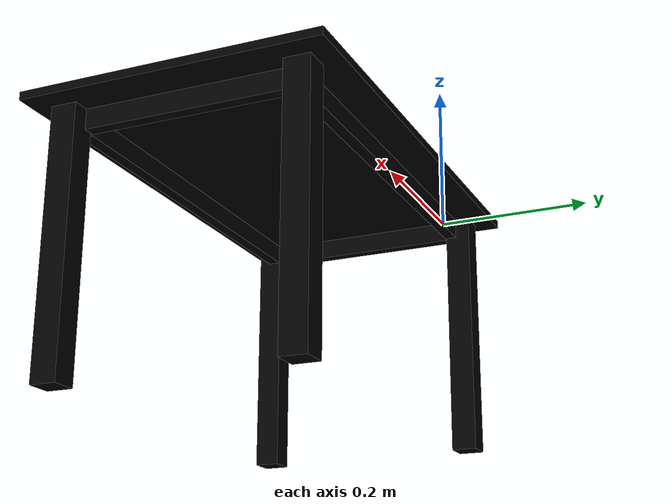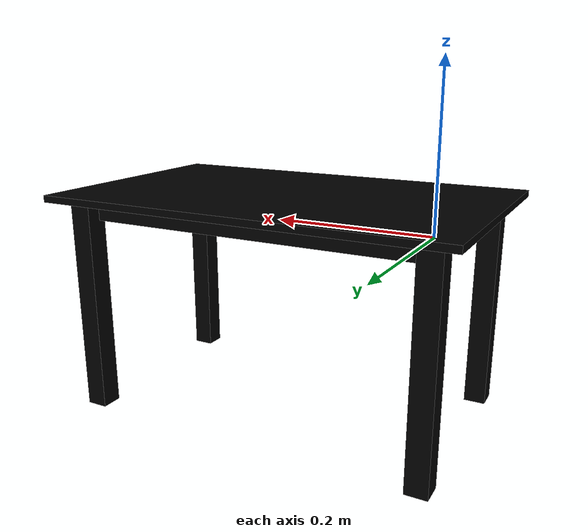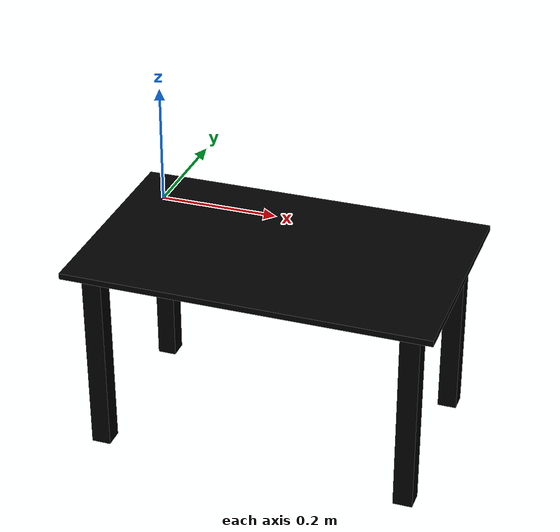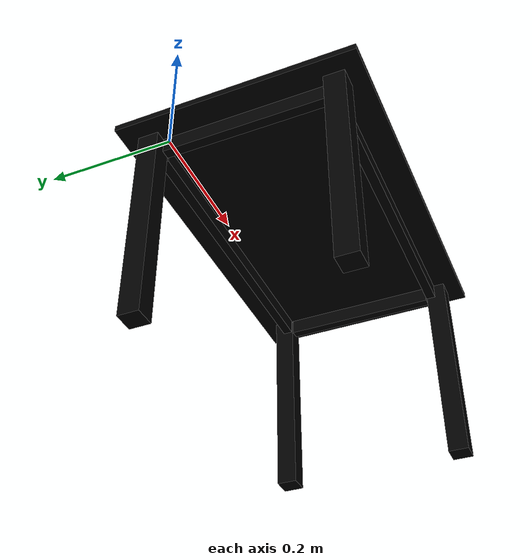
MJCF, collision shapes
<mujoco model="table_bjorkudden_0207">
  <custom>
    <numeric data="0.146806 0.093341 0.015845 0.707107 0.0 0.707107 0.0" name="0_part0_initpos" />
   <numeric data="-0.35001 0.049956 0.018455 0.0 -1.0 5.9e-05 -0.0" name="4_part4_initpos" />
   <numeric data="-0.133236 0.38 0.015845 0.5 -0.5 0.5 -0.5" name="3_part3_initpos" />
   <numeric data="-0.144303 0.29 0.015845 0.5 -0.5 0.5 -0.5" name="2_part2_initpos" />
   <numeric data="0.156754 0.18 0.015948 0.707107 -0.0 0.707107 -0.0" name="1_part1_initpos" />
  </custom>
  <asset>
    <mesh file="table_bjorkudden_0207/1.stl" name="part1" scale="0.0005 0.0005 0.0005" />
    <mesh file="table_bjorkudden_0207/5.stl" name="part5" scale="0.0005 0.0005 0.0005" />
    <mesh file="table_bjorkudden_0207/4.stl" name="part4" scale="0.0005 0.0005 0.0005" />
    <mesh file="table_bjorkudden_0207/3.stl" name="part3" scale="0.0005 0.0005 0.0005" />
    <mesh file="table_bjorkudden_0207/2.stl" name="part2" scale="0.0005 0.0005 0.0005" />
  </asset>
  <equality>
    <weld active="false" body1="0_part0" body2="4_part4" solimp="1 1 0.5" solref="0.01 0.3" />
    <weld active="false" body1="2_part2" body2="4_part4" solimp="1 1 0.5" solref="0.01 0.3" />
    <weld active="false" body1="3_part3" body2="4_part4" solimp="1 1 0.5" solref="0.01 0.3" />
    <weld active="false" body1="1_part1" body2="4_part4" solimp="1 1 0.5" solref="0.01 0.3" />
    <weld active="false" body1="0_part0" body2="4_part4" solimp="1 1 0.5" solref="0.01 0.3" />
    <weld active="false" body1="2_part2" body2="4_part4" solimp="1 1 0.5" solref="0.01 0.3" />
    <weld active="false" body1="1_part1" body2="4_part4" solimp="1 1 0.5" solref="0.01 0.3" />
    <weld active="false" body1="3_part3" body2="4_part4" solimp="1 1 0.5" solref="0.01 0.3" />
  </equality>
  <worldbody>
    <body name="0_part0" pos="0.5064125 -0.263525 -0.15875" quat="1 0 0 0">
      <site group="1" name="0_part0_ltgt_site0" pos="0 -0.02 0" rgba="0 0 0 0" size="0.01 0.01 0.01" type="sphere" />
      <site group="1" name="0_part0_rtgt_site0" pos="0 0.02 0" rgba="0 0 0 0" size="0.01 0.01 0.01" type="sphere" />
      <geom conaffinity="0" contype="0" density="0" mesh="part1" name="0_part0_mesh" pos="0.0 0.0 0.0" rgba="0.82 0.71 0.55 1" type="mesh" />
      <site name="0_part0_horizontal_radius_site" pos="0.0 0.0 0.0" quat="1 0 0 0" rgba="0 0 0 0" size="0.0005" />
      <site name="0_part0_top_site" pos="0.0 0.0 0.15875" quat="1 0 0 0" rgba="0 0 0 0" size="0.0005" />
      <site name="0_part0_bottom_site" pos="0.0 0.0 -0.15875" quat="1 0 0 0" rgba="0 0 0 0" size="0.0005" />
      <site name="0_part0_corner_site8" pos="-0.015875 0.015875 0.15875" quat="1 0 0 0" rgba="0 0 0 0" size="0.01" />
      <site name="0_part0_corner_site7" pos="0.015875 0.015875 0.15875" quat="1 0 0 0" rgba="0 0 0 0" size="0.01" />
      <site name="0_part0_corner_site6" pos="0.015875 -0.015875 0.15875" quat="1 0 0 0" rgba="0 0 0 0" size="0.01" />
      <site name="0_part0_corner_site5" pos="-0.015875 -0.015875 0.15875" quat="1 0 0 0" rgba="0 0 0 0" size="0.01" />
      <site name="0_part0_corner_site4" pos="-0.015875 0.015875 -0.15875" quat="1 0 0 0" rgba="0 0 0 0" size="0.01" />
      <site name="0_part0_corner_site3" pos="0.015875 0.015875 -0.15875" quat="1 0 0 0" rgba="0 0 0 0" size="0.01" />
      <site name="0_part0_corner_site2" pos="0.015875 -0.015875 -0.15875" quat="1 0 0 0" rgba="0 0 0 0" size="0.01" />
      <site name="0_part0_corner_site1" pos="-0.015875 -0.015875 -0.15875" quat="1 0 0 0" rgba="0 0 0 0" size="0.01" />
      <site name="leg-top,0,90,180,270,conn_site4" pos="-0.000412505 0.000149995 0.15775" quat="1 0 0 0" rgba="0.9019 0.0980 0.2941 0.3" size="0.01" />
      <geom density="50" name="noviz_collision_0_part0_0" pos="0.0 0.0 0.0" quat="1 0 0 0" rgba="0 0 0 0" size="0.015875 0.015875 0.15875" solref="0.001 1" type="box" />
    </body>
    <body name="4_part4" pos="0.2492375122 -0.1206500061 -0.00698499845" quat="1 0 0 0">
      <geom conaffinity="0" contype="0" density="0" mesh="part5" name="4_part4_mesh" pos="0.0 0.0 0.0" rgba="0.82 0.71 0.55 1" type="mesh" />
      <site name="4_part4_horizontal_radius_site" pos="0.0 0.0 0.0" quat="1 0 0 0" rgba="0 0 0 0" size="0.0005" />
      <site name="4_part4_top_site" pos="0.0 0.0 0.01968499755" quat="1 0 0 0" rgba="0 0 0 0" size="0.0005" />
      <site name="4_part4_bottom_site" pos="0.0 0.0 -0.01968499755" quat="1 0 0 0" rgba="0 0 0 0" size="0.0005" />
      <site name="4_part4_corner_site8" pos="-0.2984500122 0.1841499939 0.01968499755" quat="1 0 0 0" rgba="0 0 0 0" size="0.01" />
      <site name="4_part4_corner_site7" pos="0.2984500122 0.1841499939 0.01968499755" quat="1 0 0 0" rgba="0 0 0 0" size="0.01" />
      <site name="4_part4_corner_site6" pos="0.2984500122 -0.1841499939 0.01968499755" quat="1 0 0 0" rgba="0 0 0 0" size="0.01" />
      <site name="4_part4_corner_site5" pos="-0.2984500122 -0.1841499939 0.01968499755" quat="1 0 0 0" rgba="0 0 0 0" size="0.01" />
      <site name="4_part4_corner_site4" pos="-0.2984500122 0.1841499939 -0.01968499755" quat="1 0 0 0" rgba="0 0 0 0" size="0.01" />
      <site name="4_part4_corner_site3" pos="0.2984500122 0.1841499939 -0.01968499755" quat="1 0 0 0" rgba="0 0 0 0" size="0.01" />
      <site name="4_part4_corner_site2" pos="0.2984500122 -0.1841499939 -0.01968499755" quat="1 0 0 0" rgba="0 0 0 0" size="0.01" />
      <site name="4_part4_corner_site1" pos="-0.2984500122 -0.1841499939 -0.01968499755" quat="1 0 0 0" rgba="0 0 0 0" size="0.01" />
      <site name="top-leg,0,90,180,270,conn_site4" pos="0.2567625 -0.142725 0.005985000000000001" quat="1 0 0 0" rgba="0.9019 0.0980 0.2941 0.3" size="0.01" />
      <site name="top-leg,0,90,180,270,conn_site3" pos="0.2567625 0.14265 0.005985000000000001" quat="1 0 0 0" rgba="0.9019 0.0980 0.2941 0.3" size="0.01" />
      <site name="top-leg,0,90,180,270,conn_site2" pos="-0.2577375 0.14265 0.005985000000000001" quat="1 0 0 0" rgba="0.9019 0.0980 0.2941 0.3" size="0.01" />
      <site name="top-leg,0,90,180,270,conn_site1" pos="-0.2577375 -0.142725 0.005985000000000001" quat="1 0 0 0" rgba="0.9019 0.0980 0.2941 0.3" size="0.01" />
      <geom density="50" name="noviz_collision_4_part4_0" pos="3.9500000000000003e-07 1e-08 0.013485" quat="1 0 0 0" rgba="0 0 0 0" size="0.2984504 0.18415 0.005" solref="0.001 1" type="box" />
      <geom density="50" name="noviz_collision_4_part4_1" pos="3.9500000000000003e-07 0.13415000000000002 -0.0070149999999999995" quat="1 0 0 0" rgba="0 0 0 0" size="0.23750000000000002 0.0075 0.0125" solref="0.001 1" type="box" />
      <geom density="50" name="noviz_collision_4_part4_2" pos="3.9500000000000003e-07 -0.13435 -0.0070149999999999995" quat="1 0 0 0" rgba="0 0 0 0" size="0.23750000000000002 0.0075 0.0125" solref="0.001 1" type="box" />
      <geom density="50" name="noviz_collision_4_part4_3" pos="0.2477625 1e-08 -0.0070149999999999995" quat="1 0 0 0" rgba="0 0 0 0" size="0.0075 0.125 0.0125" solref="0.001 1" type="box" />
      <geom density="50" name="noviz_collision_4_part4_4" pos="-0.2507375 1e-08 -0.0070149999999999995" quat="1 0 0 0" rgba="0 0 0 0" size="0.0075 0.125 0.0125" solref="0.001 1" type="box" />
    </body>
    <body name="3_part3" pos="-0.0079375 -0.263525 -0.15875" quat="1 0 0 0">
      <geom conaffinity="0" contype="0" density="0" mesh="part4" name="3_part3_mesh" pos="0.0 0.0 0.0" rgba="0.82 0.71 0.55 1" type="mesh" />
      <site group="1" name="3_part3_ltgt_site0" pos="-0.02 0 0" rgba="0 0 0 0" size="0.01 0.01 0.01" type="sphere" />
      <site group="1" name="3_part3_rtgt_site0" pos="0.02 0 0" rgba="0 0 0 0" size="0.01 0.01 0.01" type="sphere" />
      <site name="3_part3_horizontal_radius_site" pos="0.0 0.0 0.0" quat="1 0 0 0" rgba="0 0 0 0" size="0.0005" />
      <site name="3_part3_top_site" pos="0.0 0.0 0.15875" quat="1 0 0 0" rgba="0 0 0 0" size="0.0005" />
      <site name="3_part3_bottom_site" pos="0.0 0.0 -0.15875" quat="1 0 0 0" rgba="0 0 0 0" size="0.0005" />
      <site name="3_part3_corner_site8" pos="-0.015875 0.015875 0.15875" quat="1 0 0 0" rgba="0 0 0 0" size="0.01" />
      <site name="3_part3_corner_site7" pos="0.015875 0.015875 0.15875" quat="1 0 0 0" rgba="0 0 0 0" size="0.01" />
      <site name="3_part3_corner_site6" pos="0.015875 -0.015875 0.15875" quat="1 0 0 0" rgba="0 0 0 0" size="0.01" />
      <site name="3_part3_corner_site5" pos="-0.015875 -0.015875 0.15875" quat="1 0 0 0" rgba="0 0 0 0" size="0.01" />
      <site name="3_part3_corner_site4" pos="-0.015875 0.015875 -0.15875" quat="1 0 0 0" rgba="0 0 0 0" size="0.01" />
      <site name="3_part3_corner_site3" pos="0.015875 0.015875 -0.15875" quat="1 0 0 0" rgba="0 0 0 0" size="0.01" />
      <site name="3_part3_corner_site2" pos="0.015875 -0.015875 -0.15875" quat="1 0 0 0" rgba="0 0 0 0" size="0.01" />
      <site name="3_part3_corner_site1" pos="-0.015875 -0.015875 -0.15875" quat="1 0 0 0" rgba="0 0 0 0" size="0.01" />
      <site name="leg-top,0,90,180,270,conn_site1" pos="-0.0005625000000000001 0.000149995 0.15775" quat="1 0 0 0" rgba="0.9019 0.0980 0.2941 0.3" size="0.01" />
      <geom density="50" name="noviz_collision_3_part3_0" pos="0.0 0.0 0.0" quat="1 0 0 0" rgba="0 0 0 0" size="0.015875 0.015875 0.15875" solref="0.001 1" type="box" />
    </body>
    <body name="2_part2" pos="-0.0079375 0.022225 -0.15875" quat="1 0 0 0">
      <geom conaffinity="0" contype="0" density="0" mesh="part3" name="2_part2_mesh" pos="0.0 0.0 0.0" rgba="0.82 0.71 0.55 1" type="mesh" />
      <site group="1" name="2_part2_ltgt_site0" pos="-0.02 0 0" rgba="0 0 0 0" size="0.01 0.01 0.01" type="sphere" />
      <site group="1" name="2_part2_rtgt_site0" pos="0.02 0 0" rgba="0 0 0 0" size="0.01 0.01 0.01" type="sphere" />
      <site name="2_part2_horizontal_radius_site" pos="0.0 0.0 0.0" quat="1 0 0 0" rgba="0 0 0 0" size="0.0005" />
      <site name="2_part2_top_site" pos="0.0 0.0 0.15875" quat="1 0 0 0" rgba="0 0 0 0" size="0.0005" />
      <site name="2_part2_bottom_site" pos="0.0 0.0 -0.15875" quat="1 0 0 0" rgba="0 0 0 0" size="0.0005" />
      <site name="2_part2_corner_site8" pos="-0.015875 0.015875 0.15875" quat="1 0 0 0" rgba="0 0 0 0" size="0.01" />
      <site name="2_part2_corner_site7" pos="0.015875 0.015875 0.15875" quat="1 0 0 0" rgba="0 0 0 0" size="0.01" />
      <site name="2_part2_corner_site6" pos="0.015875 -0.015875 0.15875" quat="1 0 0 0" rgba="0 0 0 0" size="0.01" />
      <site name="2_part2_corner_site5" pos="-0.015875 -0.015875 0.15875" quat="1 0 0 0" rgba="0 0 0 0" size="0.01" />
      <site name="2_part2_corner_site4" pos="-0.015875 0.015875 -0.15875" quat="1 0 0 0" rgba="0 0 0 0" size="0.01" />
      <site name="2_part2_corner_site3" pos="0.015875 0.015875 -0.15875" quat="1 0 0 0" rgba="0 0 0 0" size="0.01" />
      <site name="2_part2_corner_site2" pos="0.015875 -0.015875 -0.15875" quat="1 0 0 0" rgba="0 0 0 0" size="0.01" />
      <site name="2_part2_corner_site1" pos="-0.015875 -0.015875 -0.15875" quat="1 0 0 0" rgba="0 0 0 0" size="0.01" />
      <site name="leg-top,0,90,180,270,conn_site2" pos="-0.0005625000000000001 -0.00022500000000000002 0.15775" quat="1 0 0 0" rgba="0.9019 0.0980 0.2941 0.3" size="0.01" />
      <geom density="50" name="noviz_collision_2_part2_0" pos="0.0 0.0 0.0" quat="1 0 0 0" rgba="0 0 0 0" size="0.015875 0.015875 0.15875" solref="0.001 1" type="box" />
    </body>
    <body name="1_part1" pos="0.5064125 0.022225 -0.15875" quat="1 0 0 0">
      <geom conaffinity="0" contype="0" density="0" mesh="part2" name="1_part1_mesh" pos="0.0 0.0 0.0" rgba="0.82 0.71 0.55 1" type="mesh" />
      <site group="1" name="1_part1_ltgt_site0" pos="0 -0.02 0" rgba="0 0 0 0" size="0.01 0.01 0.01" type="sphere" />
      <site group="1" name="1_part1_rtgt_site0" pos="0 0.02 0" rgba="0 0 0 0" size="0.01 0.01 0.01" type="sphere" />
      <site name="1_part1_horizontal_radius_site" pos="0.0 0.0 0.0" quat="1 0 0 0" rgba="0 0 0 0" size="0.0005" />
      <site name="1_part1_top_site" pos="0.0 0.0 0.15875" quat="1 0 0 0" rgba="0 0 0 0" size="0.0005" />
      <site name="1_part1_bottom_site" pos="0.0 0.0 -0.15875" quat="1 0 0 0" rgba="0 0 0 0" size="0.0005" />
      <site name="1_part1_corner_site8" pos="-0.015875 0.015875 0.15875" quat="1 0 0 0" rgba="0 0 0 0" size="0.01" />
      <site name="1_part1_corner_site7" pos="0.015875 0.015875 0.15875" quat="1 0 0 0" rgba="0 0 0 0" size="0.01" />
      <site name="1_part1_corner_site6" pos="0.015875 -0.015875 0.15875" quat="1 0 0 0" rgba="0 0 0 0" size="0.01" />
      <site name="1_part1_corner_site5" pos="-0.015875 -0.015875 0.15875" quat="1 0 0 0" rgba="0 0 0 0" size="0.01" />
      <site name="1_part1_corner_site4" pos="-0.015875 0.015875 -0.15875" quat="1 0 0 0" rgba="0 0 0 0" size="0.01" />
      <site name="1_part1_corner_site3" pos="0.015875 0.015875 -0.15875" quat="1 0 0 0" rgba="0 0 0 0" size="0.01" />
      <site name="1_part1_corner_site2" pos="0.015875 -0.015875 -0.15875" quat="1 0 0 0" rgba="0 0 0 0" size="0.01" />
      <site name="1_part1_corner_site1" pos="-0.015875 -0.015875 -0.15875" quat="1 0 0 0" rgba="0 0 0 0" size="0.01" />
      <site name="leg-top,0,90,180,270,conn_site3" pos="-0.000412505 -0.00022500000000000002 0.15775" quat="1 0 0 0" rgba="0.9019 0.0980 0.2941 0.3" size="0.01" />
      <geom density="50" name="noviz_collision_1_part1_0" pos="0.0 0.0 0.0" quat="1 0 0 0" rgba="0 0 0 0" size="0.015875 0.015875 0.15875" solref="0.001 1" type="box" />
    </body>
  </worldbody>
<actuator /><sensor /><contact /><default /></mujoco>
